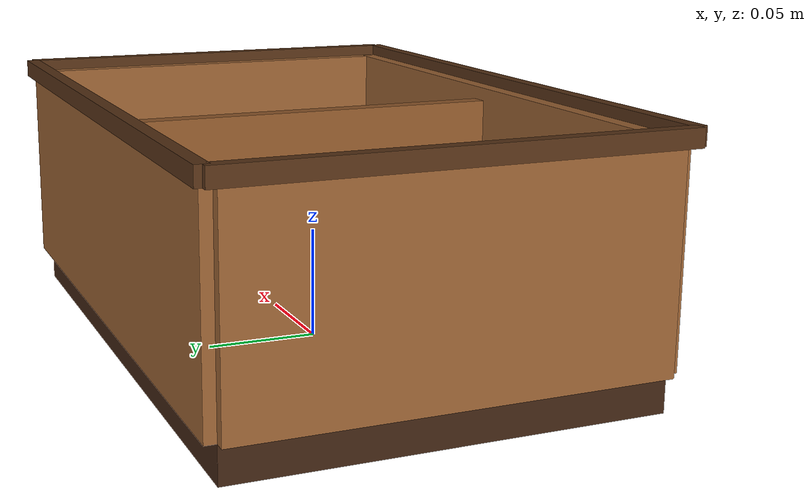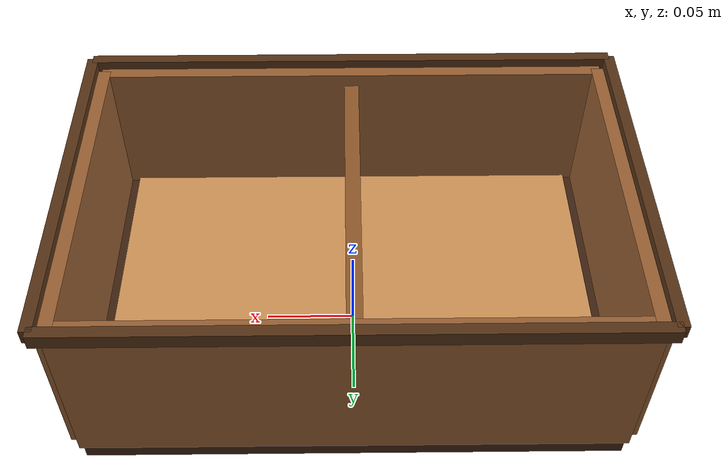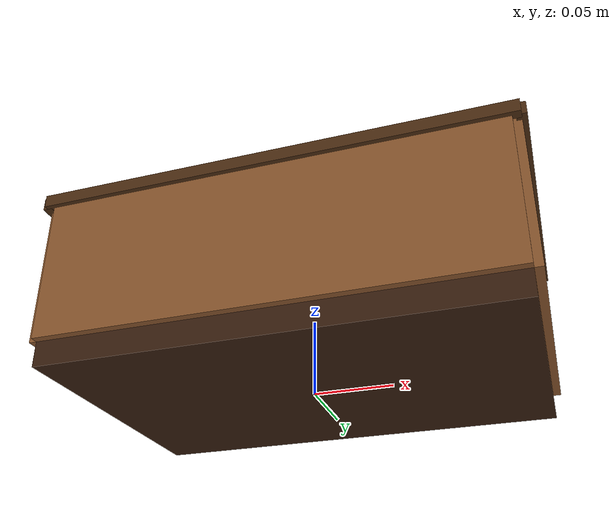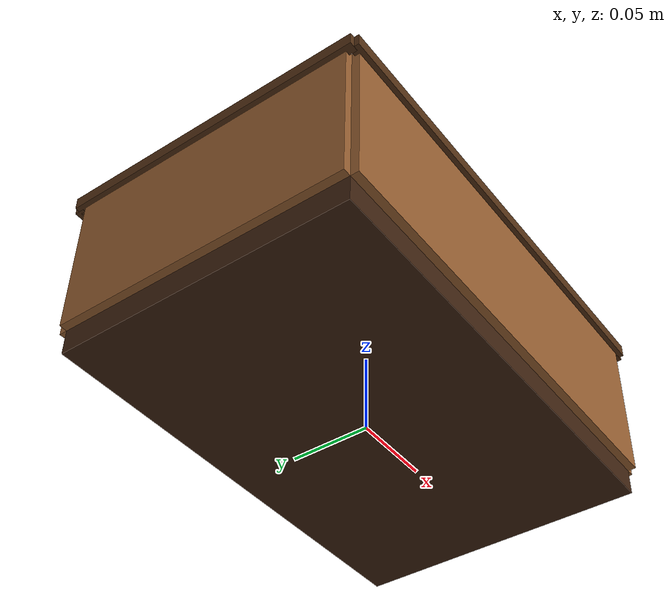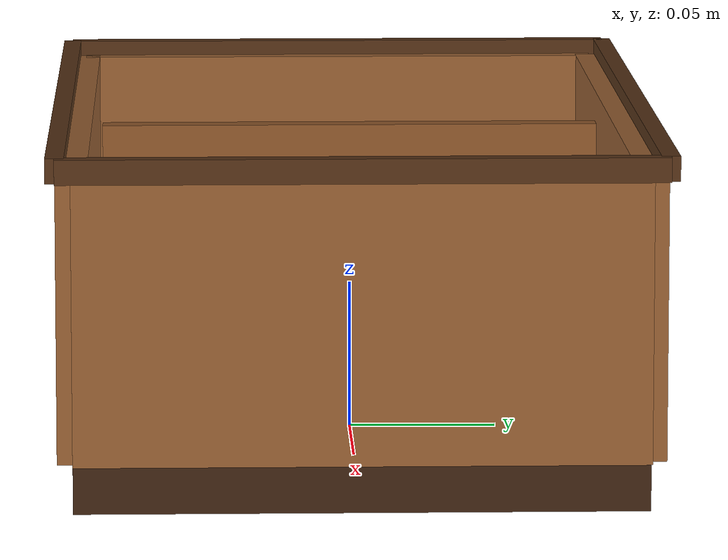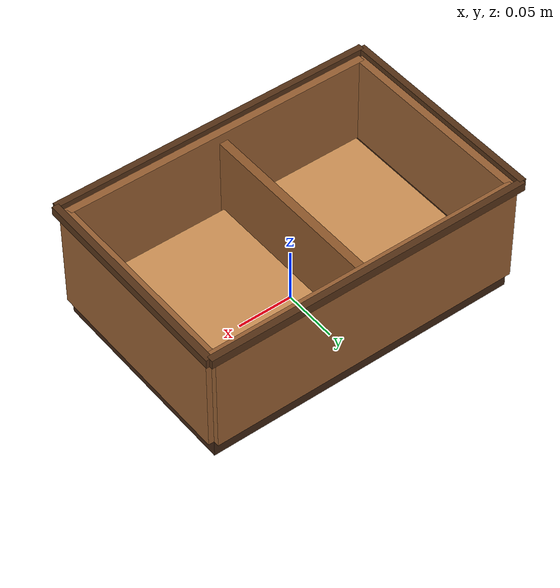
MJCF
<mujoco model="bowl_cabinet">
  <worldbody>
    <body>
      <body name="object">
        <site name="bowl_contain_region" type="box" pos="-0.064 0 0.080"
              quat="1 0 0 0" size="0.070 0.088 0.070" rgba="0 0 0 0"/>
        <site name="utensil_contain_region" type="box" pos="0.064 0 0.080"
              quat="1 0 0 0" size="0.070 0.088 0.070" rgba="0 0 0 0"/>
        <site name="contain_region" type="box" pos="0 0 0.080"
              quat="1 0 0 0" size="0.138 0.088 0.070" rgba="0 0 0 0"/>

        <geom name="wood_bottom" type="box" pos="0 0 0.014"
              size="0.142 0.092 0.014" rgba="0.25 0.14 0.07 1"
              density="5000" friction="1.5 0.02 0.001"
              solimp="0.99 0.99 0.001" solref="0.005 1" group="0"/>
        <geom name="wood_bottom_visual" type="box" pos="0 0 0.014"
              size="0.142 0.092 0.014" rgba="0.25 0.14 0.07 1"
              contype="0" conaffinity="0" group="1"/>
        <geom name="inner_floor" type="box" pos="0 0 0.032"
              size="0.130 0.080 0.005" rgba="0.82 0.58 0.34 1"
              density="5000" friction="1.5 0.02 0.001"
              solimp="0.99 0.99 0.001" solref="0.005 1" group="0"/>
        <geom name="inner_floor_visual" type="box" pos="0 0 0.032"
              size="0.130 0.080 0.005" rgba="0.82 0.58 0.34 1"
              contype="0" conaffinity="0" group="1"/>

        <geom name="left_wall" type="box" pos="-0.142 0 0.063"
              size="0.005 0.092 0.047" rgba="0.60 0.38 0.20 1"
              density="5000" friction="1.5 0.02 0.001"
              solimp="0.99 0.99 0.001" solref="0.005 1" group="0"/>
        <geom name="right_wall" type="box" pos="0.142 0 0.063"
              size="0.005 0.092 0.047" rgba="0.60 0.38 0.20 1"
              density="5000" friction="1.5 0.02 0.001"
              solimp="0.99 0.99 0.001" solref="0.005 1" group="0"/>
        <geom name="front_wall" type="box" pos="0 -0.092 0.063"
              size="0.142 0.005 0.047" rgba="0.60 0.38 0.20 1"
              density="5000" friction="1.5 0.02 0.001"
              solimp="0.99 0.99 0.001" solref="0.005 1" group="0"/>
        <geom name="back_wall" type="box" pos="0 0.092 0.063"
              size="0.142 0.005 0.047" rgba="0.60 0.38 0.20 1"
              density="5000" friction="1.5 0.02 0.001"
              solimp="0.99 0.99 0.001" solref="0.005 1" group="0"/>
        <geom name="middle_divider" type="box" pos="0 0 0.063"
              size="0.004 0.084 0.042" rgba="0.57 0.35 0.17 1"
              density="5000" friction="1.5 0.02 0.001"
              solimp="0.99 0.99 0.001" solref="0.005 1" group="0"/>

        <geom name="left_wall_visual" type="box" pos="-0.142 0 0.063"
              size="0.005 0.092 0.047" rgba="0.60 0.38 0.20 1"
              contype="0" conaffinity="0" group="1"/>
        <geom name="right_wall_visual" type="box" pos="0.142 0 0.063"
              size="0.005 0.092 0.047" rgba="0.60 0.38 0.20 1"
              contype="0" conaffinity="0" group="1"/>
        <geom name="front_wall_visual" type="box" pos="0 -0.092 0.063"
              size="0.142 0.005 0.047" rgba="0.60 0.38 0.20 1"
              contype="0" conaffinity="0" group="1"/>
        <geom name="back_wall_visual" type="box" pos="0 0.092 0.063"
              size="0.142 0.005 0.047" rgba="0.60 0.38 0.20 1"
              contype="0" conaffinity="0" group="1"/>
        <geom name="middle_divider_visual" type="box" pos="0 0 0.063"
              size="0.004 0.084 0.042" rgba="0.57 0.35 0.17 1"
              contype="0" conaffinity="0" group="1"/>

        <geom name="front_rim_visual" type="box" pos="0 -0.097 0.111"
              size="0.147 0.003 0.004" rgba="0.34 0.20 0.09 1"
              contype="0" conaffinity="0" group="1"/>
        <geom name="back_rim_visual" type="box" pos="0 0.097 0.111"
              size="0.147 0.003 0.004" rgba="0.34 0.20 0.09 1"
              contype="0" conaffinity="0" group="1"/>
        <geom name="left_rim_visual" type="box" pos="-0.147 0 0.111"
              size="0.003 0.097 0.004" rgba="0.34 0.20 0.09 1"
              contype="0" conaffinity="0" group="1"/>
        <geom name="right_rim_visual" type="box" pos="0.147 0 0.111"
              size="0.003 0.097 0.004" rgba="0.34 0.20 0.09 1"
              contype="0" conaffinity="0" group="1"/>
      </body>
      <site name="bottom_site" pos="0 0 -0.004" size="0.003" rgba="0 0 0 0"/>
      <site name="top_site" pos="0 0 0.116" size="0.003" rgba="0 0 0 0"/>
      <site name="horizontal_radius_site" pos="0.150 0 0.063"
            size="0.003" rgba="0 0 0 0"/>
    </body>
  </worldbody>
</mujoco>
